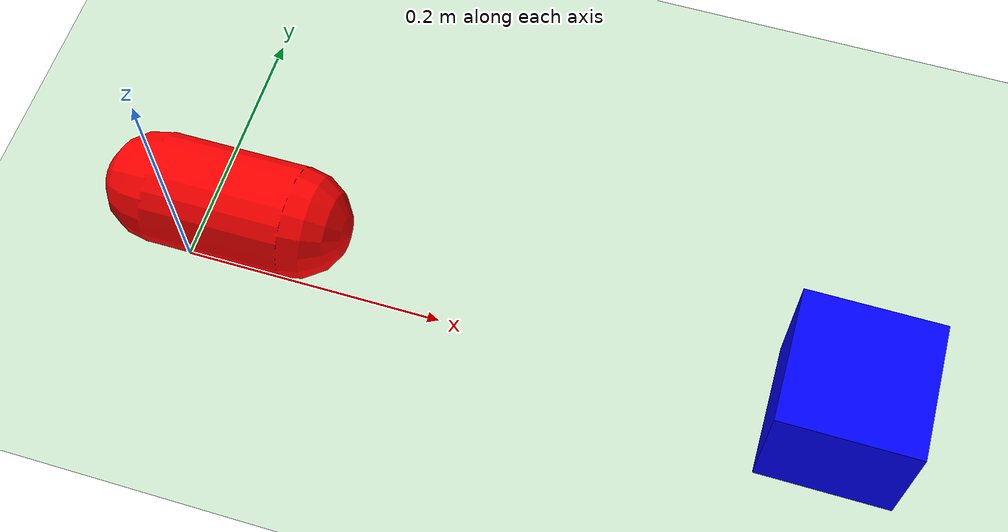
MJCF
<mujoco model="contact_force_demo">
    <option gravity="0 0 -9.81" timestep="0.002" />

    <worldbody>
        <light pos="0 0 3" dir="0 0 -1" />
        <geom name="floor" type="plane" size="5 5 0.1" rgba="0.8 0.9 0.8 1" />

        <!-- 대상 물체 (박스) -->
        <body name="box" pos="0.5 0 0.05">
            <freejoint name="box_joint" />
            <geom type="box" size="0.05 0.05 0.05" rgba="0 0 1 1" mass="1.0" />
        </body>

        <!-- 로봇 팔 (간소화) -->
        <body name="pusher" pos="0 0 0.1">
            <joint name="slide_x" type="slide" axis="1 0 0" damping="10" />
            <geom name="end_effector" type="capsule" fromto="0 0 0 0.1 0 0" size="0.04" rgba="1 0 0 1" />

            <!-- 접촉력 감지를 위한 사이트 및 센서 -->
            <site name="touch_site" pos="0.1 0 0" size="0.041" rgba="1 1 0 0" />
        </body>
    </worldbody>

    <actuator>
        <!-- 위치 제어기로 푸셔 이동 -->
        <position name="move_x" joint="slide_x" kp="1000" />
    </actuator>

    <sensor>
        <!-- 터치 센서: 법선 방향의 접촉력 감지 -->
        <touch name="contact_sensor" site="touch_site" />
    </sensor>
</mujoco>
